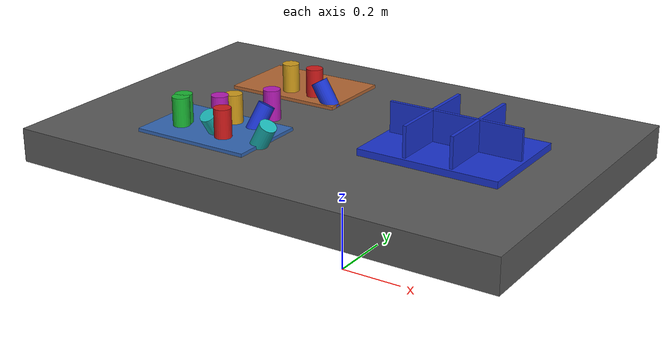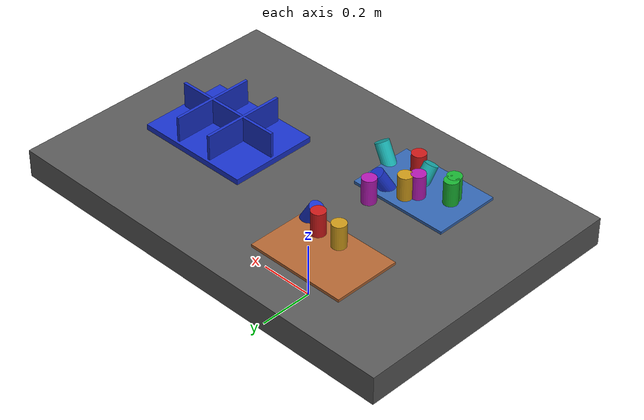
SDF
<?xml version="1.0" ?>
<sdf version="1.9">
  <!-- Standalone M1B scene.  The controller-backed Panda is spawned by the
       existing launch path; this file never alters the frozen M1A cube world. -->
  <world name="industrial_cylinder_v1">
    <physics name="bullet" type="bullet"><max_step_size>0.001</max_step_size><real_time_factor>1.0</real_time_factor></physics>
    <plugin name="gz::sim::systems::Physics" filename="gz-sim-physics-system"><engine><filename>gz-physics-bullet-featherstone-plugin</filename></engine></plugin>
    <plugin name="gz::sim::systems::UserCommands" filename="gz-sim-user-commands-system"/>
    <plugin name="gz::sim::systems::SceneBroadcaster" filename="gz-sim-scene-broadcaster-system"/>
    <plugin name="gz::sim::systems::Sensors" filename="gz-sim-sensors-system"><render_engine>ogre2</render_engine></plugin>
    <gravity>0 0 -9.81</gravity>
    <light type="directional" name="industrial_light"><pose>0 0 5 0 0 0</pose><direction>-0.3 0.2 -0.9</direction><diffuse>0.9 0.9 0.9 1</diffuse></light>
    <model name="industrial_work_table"><static>true</static><link name="link"><pose>0 0 0.4 0 0 0</pose><collision name="collision"><geometry><box><size>1.5 1.0 0.1</size></box></geometry></collision><visual name="visual"><geometry><box><size>1.5 1.0 0.1</size></box></geometry><material><diffuse>0.35 0.35 0.35 1</diffuse></material></visual></link></model>
    <model name="camera_fixture"><static>true</static><link name="camera_rgbd"><pose>-0.80 -0.80 1.40 0 0.77 0.93</pose><sensor name="front_rgbd" type="rgbd_camera"><always_on>1</always_on><update_rate>15</update_rate><topic>/xh/camera/rgbd</topic><camera><horizontal_fov>1.047</horizontal_fov><image><width>640</width><height>480</height><format>R8G8B8</format></image><clip><near>0.1</near><far>4.0</far></clip></camera></sensor></link></model>
    <model name="incoming_zone_a"><static>true</static><link name="link"><pose>-0.28 -0.22 0.455 0 0 0</pose><visual name="visual"><geometry><box><size>0.36 0.24 0.01</size></box></geometry><material><diffuse>0.2 0.4 0.7 1</diffuse></material></visual></link></model>
    <model name="incoming_zone_b"><static>true</static><link name="link"><pose>-0.28 0.22 0.455 0 0 0</pose><visual name="visual"><geometry><box><size>0.36 0.24 0.01</size></box></geometry><material><diffuse>0.7 0.4 0.2 1</diffuse></material></visual></link></model>
    <!-- M1B_RANDOM_PARTS_BEGIN -->
    <model name="cylinder_01"><pose>-0.2024 0.1609 0.5000 0.0000 0.0000 -2.2626</pose><link name="link"><inertial><mass>0.06</mass></inertial><collision name="collision"><geometry><cylinder><radius>0.025</radius><length>0.09</length></cylinder></geometry></collision><visual name="visual"><geometry><cylinder><radius>0.025</radius><length>0.09</length></cylinder></geometry><material><diffuse>0.800 0.100 0.100 1</diffuse><specular>0.15 0.15 0.15 1</specular></material></visual></link></model>
    <model name="cylinder_02"><pose>-0.3752 -0.2521 0.5000 3.1416 0.0000 -2.9849</pose><link name="link"><inertial><mass>0.06</mass></inertial><collision name="collision"><geometry><cylinder><radius>0.025</radius><length>0.09</length></cylinder></geometry></collision><visual name="visual"><geometry><cylinder><radius>0.025</radius><length>0.09</length></cylinder></geometry><material><diffuse>0.100 0.700 0.200 1</diffuse><specular>0.15 0.15 0.15 1</specular></material></visual></link></model>
    <model name="cylinder_03"><pose>-0.1868 -0.1386 0.4800 0.4500 -0.3000 -3.0982</pose><link name="link"><inertial><mass>0.06</mass></inertial><collision name="collision"><geometry><cylinder><radius>0.025</radius><length>0.09</length></cylinder></geometry></collision><visual name="visual"><geometry><cylinder><radius>0.025</radius><length>0.09</length></cylinder></geometry><material><diffuse>0.100 0.200 0.800 1</diffuse><specular>0.15 0.15 0.15 1</specular></material></visual></link></model>
    <model name="cylinder_04"><pose>-0.2878 0.1606 0.5000 0.0000 0.0000 -1.0244</pose><link name="link"><inertial><mass>0.06</mass></inertial><collision name="collision"><geometry><cylinder><radius>0.025</radius><length>0.09</length></cylinder></geometry></collision><visual name="visual"><geometry><cylinder><radius>0.025</radius><length>0.09</length></cylinder></geometry><material><diffuse>0.800 0.600 0.100 1</diffuse><specular>0.15 0.15 0.15 1</specular></material></visual></link></model>
    <model name="cylinder_05"><pose>-0.1977 -0.0631 0.5000 3.1416 0.0000 1.7365</pose><link name="link"><inertial><mass>0.06</mass></inertial><collision name="collision"><geometry><cylinder><radius>0.025</radius><length>0.09</length></cylinder></geometry></collision><visual name="visual"><geometry><cylinder><radius>0.025</radius><length>0.09</length></cylinder></geometry><material><diffuse>0.700 0.100 0.700 1</diffuse><specular>0.15 0.15 0.15 1</specular></material></visual></link></model>
    <model name="cylinder_06"><pose>-0.2569 -0.2523 0.4800 0.4500 -0.3000 0.3627</pose><link name="link"><inertial><mass>0.06</mass></inertial><collision name="collision"><geometry><cylinder><radius>0.025</radius><length>0.09</length></cylinder></geometry></collision><visual name="visual"><geometry><cylinder><radius>0.025</radius><length>0.09</length></cylinder></geometry><material><diffuse>0.100 0.700 0.700 1</diffuse><specular>0.15 0.15 0.15 1</specular></material></visual></link></model>
    <model name="cylinder_07"><pose>-0.2198 -0.2629 0.5000 0.0000 0.0000 -1.9051</pose><link name="link"><inertial><mass>0.06</mass></inertial><collision name="collision"><geometry><cylinder><radius>0.025</radius><length>0.09</length></cylinder></geometry></collision><visual name="visual"><geometry><cylinder><radius>0.025</radius><length>0.09</length></cylinder></geometry><material><diffuse>0.800 0.100 0.100 1</diffuse><specular>0.15 0.15 0.15 1</specular></material></visual></link></model>
    <model name="cylinder_08"><pose>-0.3831 -0.2297 0.5000 3.1416 0.0000 0.7498</pose><link name="link"><inertial><mass>0.06</mass></inertial><collision name="collision"><geometry><cylinder><radius>0.025</radius><length>0.09</length></cylinder></geometry></collision><visual name="visual"><geometry><cylinder><radius>0.025</radius><length>0.09</length></cylinder></geometry><material><diffuse>0.100 0.700 0.200 1</diffuse><specular>0.15 0.15 0.15 1</specular></material></visual></link></model>
    <model name="cylinder_09"><pose>-0.1419 0.1307 0.4800 0.4500 -0.3000 -0.9893</pose><link name="link"><inertial><mass>0.06</mass></inertial><collision name="collision"><geometry><cylinder><radius>0.025</radius><length>0.09</length></cylinder></geometry></collision><visual name="visual"><geometry><cylinder><radius>0.025</radius><length>0.09</length></cylinder></geometry><material><diffuse>0.100 0.200 0.800 1</diffuse><specular>0.15 0.15 0.15 1</specular></material></visual></link></model>
    <model name="cylinder_10"><pose>-0.2655 -0.1515 0.5000 0.0000 0.0000 2.7443</pose><link name="link"><inertial><mass>0.06</mass></inertial><collision name="collision"><geometry><cylinder><radius>0.025</radius><length>0.09</length></cylinder></geometry></collision><visual name="visual"><geometry><cylinder><radius>0.025</radius><length>0.09</length></cylinder></geometry><material><diffuse>0.800 0.600 0.100 1</diffuse><specular>0.15 0.15 0.15 1</specular></material></visual></link></model>
    <model name="cylinder_11"><pose>-0.2899 -0.1838 0.5000 3.1416 0.0000 -0.5587</pose><link name="link"><inertial><mass>0.06</mass></inertial><collision name="collision"><geometry><cylinder><radius>0.025</radius><length>0.09</length></cylinder></geometry></collision><visual name="visual"><geometry><cylinder><radius>0.025</radius><length>0.09</length></cylinder></geometry><material><diffuse>0.700 0.100 0.700 1</diffuse><specular>0.15 0.15 0.15 1</specular></material></visual></link></model>
    <model name="cylinder_12"><pose>-0.0945 -0.2510 0.4800 0.4500 -0.3000 1.9780</pose><link name="link"><inertial><mass>0.06</mass></inertial><collision name="collision"><geometry><cylinder><radius>0.025</radius><length>0.09</length></cylinder></geometry></collision><visual name="visual"><geometry><cylinder><radius>0.025</radius><length>0.09</length></cylinder></geometry><material><diffuse>0.100 0.700 0.700 1</diffuse><specular>0.15 0.15 0.15 1</specular></material></visual></link></model>
    <!-- M1B_RANDOM_PARTS_END -->
    <model name="blue_partition_bin"><static>true</static><pose>0.36 0 0.45 0 0 0</pose><link name="link"><collision name="floor"><pose>0 0 0.01 0 0 0</pose><geometry><box><size>0.42 0.32 0.02</size></box></geometry></collision><visual name="floor_visual"><pose>0 0 0.01 0 0 0</pose><geometry><box><size>0.42 0.32 0.02</size></box></geometry><material><diffuse>0.1 0.2 0.8 1</diffuse></material></visual><visual name="row_divider"><pose>0 0 0.06 0 0 0</pose><geometry><box><size>0.40 0.01 0.10</size></box></geometry><material><diffuse>0.1 0.2 0.8 1</diffuse></material></visual><visual name="col_divider_a"><pose>-0.07 0 0.06 0 0 0</pose><geometry><box><size>0.01 0.30 0.10</size></box></geometry><material><diffuse>0.1 0.2 0.8 1</diffuse></material></visual><visual name="col_divider_b"><pose>0.07 0 0.06 0 0 0</pose><geometry><box><size>0.01 0.30 0.10</size></box></geometry><material><diffuse>0.1 0.2 0.8 1</diffuse></material></visual></link></model>
    <!-- Reserved only: second table, bin transport corridor, stackable-bin
         collision volume, and second arm mounting namespace. -->
  </world>
</sdf>
